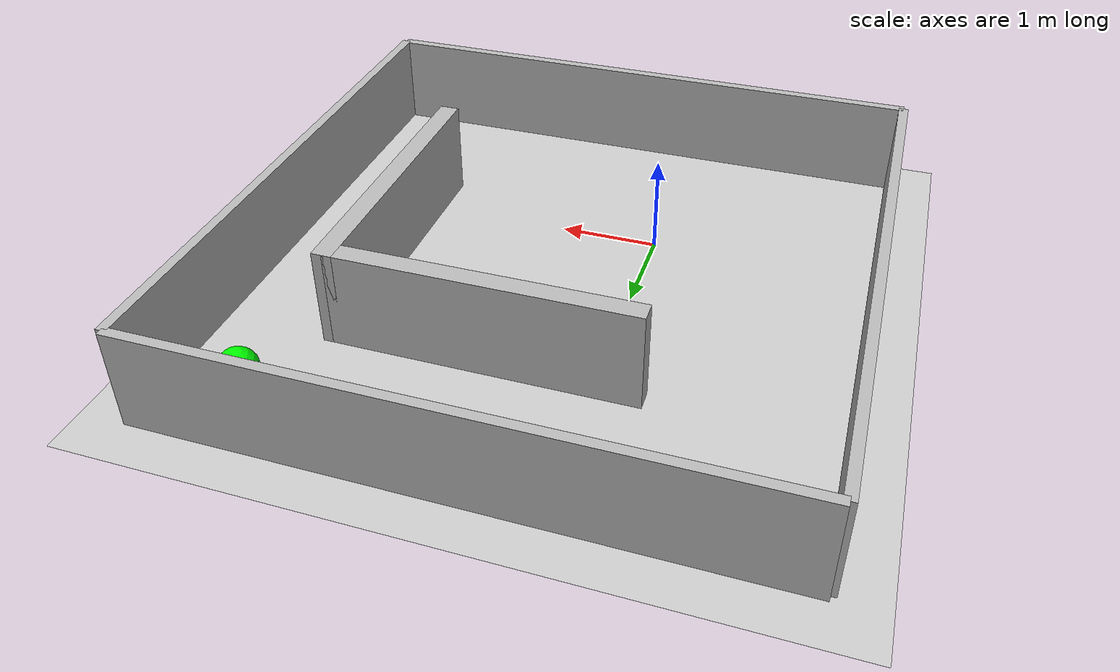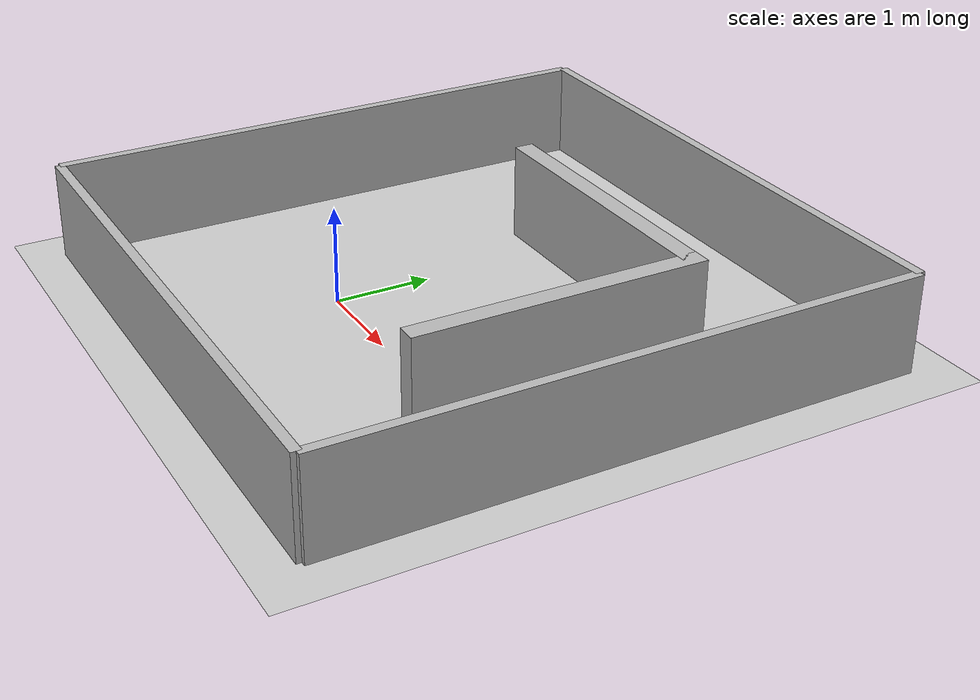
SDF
<?xml version="1.0"?>
<sdf version="1.6">
  <world name="martha_test_world_6">
    <physics name="default_physics" type="ode">
      <max_step_size>0.001</max_step_size>
      <real_time_update_rate>1000</real_time_update_rate>
      <real_time_factor>1.0</real_time_factor>
    </physics>
    <gravity>0 0 -9.81</gravity>
    <include><uri>model://sun</uri></include>
    <include><uri>model://ground_plane</uri></include>
    <plugin name="gazebo_ros_state" filename="libgazebo_ros_state.so">
      <ros><namespace>/gazebo</namespace></ros>
      <update_rate>50.0</update_rate>
    </plugin>

    <!-- Arena center: (0.7, 1.0). -->
    <model name="wall_left"><static>true</static><pose>0.7 4.0 0.5 0 0 0</pose><link name="link"><collision name="collision"><geometry><box><size>6 0.1 1</size></box></geometry></collision><visual name="visual"><geometry><box><size>6 0.1 1</size></box></geometry></visual></link></model>
    <model name="wall_right"><static>true</static><pose>0.7 -2.0 0.5 0 0 0</pose><link name="link"><collision name="collision"><geometry><box><size>6 0.1 1</size></box></geometry></collision><visual name="visual"><geometry><box><size>6 0.1 1</size></box></geometry></visual></link></model>
    <model name="wall_front"><static>true</static><pose>3.7 1.0 0.5 0 0 0</pose><link name="link"><collision name="collision"><geometry><box><size>0.1 6 1</size></box></geometry></collision><visual name="visual"><geometry><box><size>0.1 6 1</size></box></geometry></visual></link></model>
    <model name="wall_back"><static>true</static><pose>-2.3 1.0 0.5 0 0 0</pose><link name="link"><collision name="collision"><geometry><box><size>0.1 6 1</size></box></geometry></collision><visual name="visual"><geometry><box><size>0.1 6 1</size></box></geometry></visual></link></model>

    <model name="l_wall_1"><static>true</static><pose>1.0 2.4 0.5 0 0 0</pose><link name="link"><collision name="collision"><geometry><box><size>3 0.2 1</size></box></geometry></collision><visual name="visual"><geometry><box><size>3 0.2 1</size></box></geometry></visual></link></model>
    <model name="l_wall_2"><static>true</static><pose>2.5 1.0 0.5 0 0 1.570796</pose><link name="link"><collision name="collision"><geometry><box><size>3 0.2 1</size></box></geometry></collision><visual name="visual"><geometry><box><size>3 0.2 1</size></box></geometry></visual></link></model>

    <model name="goal_point">
      <static>true</static><pose>3.0 3.3 0.2 0 0 0</pose>
      <link name="link"><visual name="visual"><geometry><sphere><radius>0.2</radius></sphere></geometry><material><ambient>0 1 0 1</ambient><diffuse>0 1 0 1</diffuse></material></visual></link>
    </model>
  </world>
</sdf>
